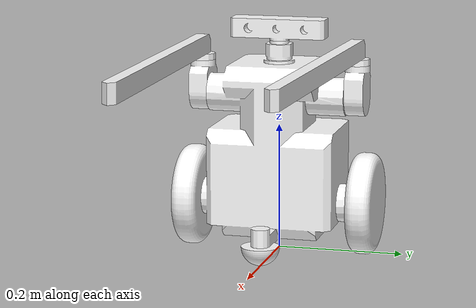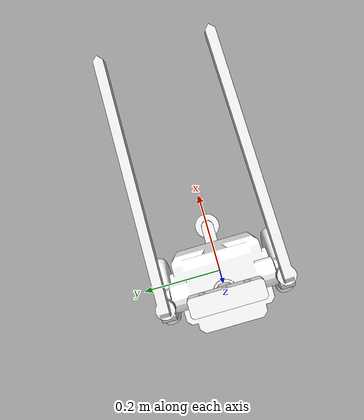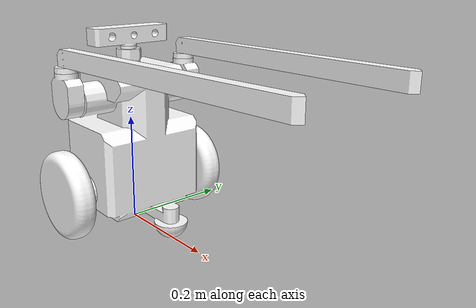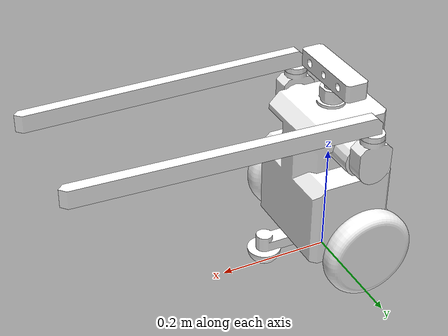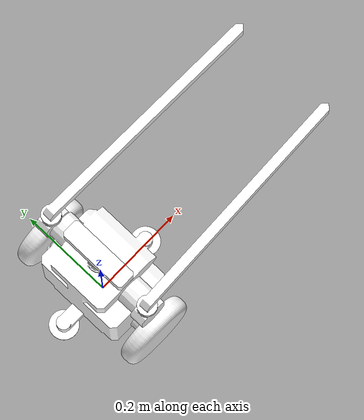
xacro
<?xml version="1.0"?>
<robot xmlns:xacro="http://www.ros.org/wiki/xacro" name="bbr_rob">
    <xacro:macro name="bbr_rob" >

  <link name="base_footprint" />

  <link
    name="base_link">
    <inertial>
      <origin
        xyz="0.0055548 -1.0842E-17 0.12396"
        rpy="0 0 0" />
      <mass
        value="4" />
      <inertia
        ixx="0.034878"
        ixy="0"
        ixz="-0.00014227"
        iyy="0.030104"
        iyz="0"
        izz="0.019095" />
    </inertial>
    <visual>
      <origin
        xyz="0 0 0"
        rpy="0 0 0" />
      <geometry>
        <mesh
          filename="file://$(find bbr_rob)/bbr_description/meshes/base_link.STL" />
      </geometry>
      <material
        name="">
        <color
          rgba="1 1 1 1" />
      </material>
    </visual>
    <collision>
      <origin
        xyz="0 0 0"
        rpy="0 0 0" />
      <geometry>
        <mesh
          filename="file://$(find bbr_rob)/bbr_description/meshes/base_link.STL" />
      </geometry>
    </collision>
  </link>

  <joint name="base_footprint_joint" type="fixed">
    <parent link="base_footprint"/>
    <child link="base_link"/>
    <origin xyz="0.0 0.0 0.03"/>
  </joint>

  <link
    name="IMU_link">
    <inertial>
      <origin
        xyz="-4.6593E-05 -4.3368E-18 0.019093"
        rpy="0 0 0" />
      <mass
        value="0.037898" />
      <inertia
        ixx="6.4173E-06"
        ixy="-4.749E-23"
        ixz="1.601E-09"
        iyy="6.456E-06"
        iyz="3.2231E-22"
        izz="7.9599E-06" />
    </inertial>
    <visual>
      <origin
        xyz="0 0 0"
        rpy="0 0 0" />
      <geometry>
        <mesh
          filename="file://$(find bbr_rob)/bbr_description/meshes/IMU_link.STL" />
      </geometry>
      <material
        name="">
        <color
          rgba="1 1 1 1" />
      </material>
    </visual>
    <collision>
      <origin
        xyz="0 0 0"
        rpy="0 0 0" />
      <geometry>
        <mesh
          filename="file://$(find bbr_rob)/bbr_description/meshes/IMU_link.STL" />
      </geometry>
    </collision>
  </link>
  <joint
    name="IMU_joint"
    type="fixed">
    <origin
      xyz="0 0 0.27"
      rpy="0 0 0" />
    <parent
      link="base_link" />
    <child
      link="IMU_link" />
    <axis
      xyz="0 0 0" />
  </joint>
  <link
    name="camera_link">
    <inertial>
      <origin
        xyz="-0.00052746 0.00012148 0.024642"
        rpy="0 0 0" />
      <mass
        value="0.17291" />
      <inertia
        ixx="0.00033064"
        ixy="-2.2114E-07"
        ixz="3.2623E-08"
        iyy="3.6772E-05"
        iyz="-7.5136E-09"
        izz="0.00033873" />
    </inertial>
    <visual>
      <origin
        xyz="0 0 0"
        rpy="0 0 0" />
      <geometry>
        <mesh
          filename="file://$(find bbr_rob)/bbr_description/meshes/camera_link.STL" />
      </geometry>
      <material
        name="">
        <color
          rgba="1 1 1 1" />
      </material>
    </visual>
    <collision>
      <origin
        xyz="0 0 0"
        rpy="0 0 0" />
      <geometry>
        <mesh
          filename="file://$(find bbr_rob)/bbr_description/meshes/camera_link.STL" />
      </geometry>
    </collision>
  </link>
  <joint
    name="camera_joint"
    type="fixed">
    <origin
      xyz="0 0 0.03"
      rpy="0 0 0" />
    <parent
      link="IMU_link" />
    <child
      link="camera_link" />
    <axis
      xyz="0 0 0" />
  </joint>
  <link
    name="right_shoulder_link">
    <inertial>
      <origin
        xyz="-0.0001526 -0.015 0.010932"
        rpy="0 0 0" />
      <mass
        value="0.12398" />
      <inertia
        ixx="6.4232E-05"
        ixy="-1.6665E-20"
        ixz="3.4019E-07"
        iyy="8.4873E-05"
        iyz="-2.8292E-20"
        izz="3.9866E-05" />
    </inertial>
    <visual>
      <origin
        xyz="0 0 0"
        rpy="0 0 0" />
      <geometry>
        <mesh
          filename="file://$(find bbr_rob)/bbr_description/meshes/right_shoulder_link.STL" />
      </geometry>
      <material
        name="">
        <color
          rgba="1 1 1 1" />
      </material>
    </visual>
    <collision>
      <origin
        xyz="0 0 0"
        rpy="0 0 0" />
      <geometry>
        <mesh
          filename="file://$(find bbr_rob)/bbr_description/meshes/right_shoulder_link.STL" />
      </geometry>
    </collision>
  </link>
  <joint
    name="right_shoulder_joint"
    type="revolute">
    <origin
      xyz="0 -0.11 0.22"
      rpy="0 0 0" />
    <parent
      link="base_link" />
    <child
      link="right_shoulder_link" />
    <axis
      xyz="0 1 0" />
    <limit
      lower="-3.14"
      upper="3.14"
      effort="100"
      velocity="100" />
  </joint>
  <link
    name="right_limb_link">
    <inertial>
      <origin
        xyz="0.23812 0.0074497 0.02755"
        rpy="0 0 0" />
      <mass
        value="0.32057" />
      <inertia
        ixx="4.986E-05"
        ixy="-0.00023219"
        ixz="-0.00016738"
        iyy="0.0075326"
        iyz="-5.2112E-06"
        izz="0.0075201" />
    </inertial>
    <visual>
      <origin
        xyz="0 0 0"
        rpy="0 0 0" />
      <geometry>
        <mesh
          filename="file://$(find bbr_rob)/bbr_description/meshes/right_limb_link.STL" />
      </geometry>
      <material
        name="">
        <color
          rgba="1 1 1 1" />
      </material>
    </visual>
    <collision>
      <origin
        xyz="0 0 0"
        rpy="0 0 0" />
      <geometry>
        <mesh
          filename="file://$(find bbr_rob)/bbr_description/meshes/right_limb_link.STL" />
      </geometry>
    </collision>
  </link>
  <joint
    name="right_limb_joint"
    type="revolute">
    <origin
      xyz="0 -0.015 0.049995"
      rpy="0 0 0" />
    <parent
      link="right_shoulder_link" />
    <child
      link="right_limb_link" />
    <axis
      xyz="-0.013958 0 0.9999" />
    <limit
      lower="-3.14"
      upper="3.14"
      effort="100"
      velocity="100" />
  </joint>
  <link
    name="left_shoulder_link">
    <inertial>
      <origin
        xyz="-0.00016452 0.015 0.010932"
        rpy="0 0 0" />
      <mass
        value="0.12398" />
      <inertia
        ixx="6.4231E-05"
        ixy="2.1973E-22"
        ixz="3.6674E-07"
        iyy="8.4873E-05"
        iyz="2.5622E-20"
        izz="3.9867E-05" />
    </inertial>
    <visual>
      <origin
        xyz="0 0 0"
        rpy="0 0 0" />
      <geometry>
        <mesh
          filename="file://$(find bbr_rob)/bbr_description/meshes/left_shoulder_link.STL" />
      </geometry>
      <material
        name="">
        <color
          rgba="1 1 1 1" />
      </material>
    </visual>
    <collision>
      <origin
        xyz="0 0 0"
        rpy="0 0 0" />
      <geometry>
        <mesh
          filename="file://$(find bbr_rob)/bbr_description/meshes/left_shoulder_link.STL" />
      </geometry>
    </collision>
  </link>
  <joint
    name="left_shoulder_joint"
    type="revolute">
    <origin
      xyz="0 0.11 0.22"
      rpy="0 0 0" />
    <parent
      link="base_link" />
    <child
      link="left_shoulder_link" />
    <axis
      xyz="0 1 0" />
    <limit
      lower="-3.14"
      upper="3.14"
      effort="100"
      velocity="100" />
  </joint>
  <link
    name="left_limb_link">
    <inertial>
      <origin
        xyz="0.23814 -0.00578 0.02781"
        rpy="0 0 0" />
      <mass
        value="0.32057" />
      <inertia
        ixx="4.7528E-05"
        ixy="0.00018343"
        ixz="-0.00017558"
        iyy="0.0075353"
        iyz="4.2891E-06"
        izz="0.0075197" />
    </inertial>
    <visual>
      <origin
        xyz="0 0 0"
        rpy="0 0 0" />
      <geometry>
        <mesh
          filename="file://$(find bbr_rob)/bbr_description/meshes/left_limb_link.STL" />
      </geometry>
      <material
        name="">
        <color
          rgba="1 1 1 1" />
      </material>
    </visual>
    <collision>
      <origin
        xyz="0 0 0"
        rpy="0 0 0" />
      <geometry>
        <mesh
          filename="file://$(find bbr_rob)/bbr_description/meshes/left_limb_link.STL" />
      </geometry>
    </collision>
  </link>
  <joint
    name="left_limb_joint"
    type="revolute">
    <origin
      xyz="0 0.015 0.049994"
      rpy="0 0 0" />
    <parent
      link="left_shoulder_link" />
    <child
      link="left_limb_link" />
    <axis
      xyz="-0.015048 0 0.99989" />
    <limit
      lower="-3.14"
      upper="3.14"
      effort="100"
      velocity="100" />
  </joint>
  <link
    name="right_wheel_link">
    <inertial>
      <origin
        xyz="9.541E-18 -0.02063 -1.3878E-17"
        rpy="0 0 0" />
      <mass
        value="0.67292" />
      <inertia
        ixx="0.0012159"
        ixy="1.0596E-20"
        ixz="-3.5451E-37"
        iyy="0.0022611"
        iyz="-1.4966E-36"
        izz="0.0012159" />
    </inertial>
    <visual>
      <origin
        xyz="0 0 0"
        rpy="0 0 0" />
      <geometry>
        <mesh
          filename="file://$(find bbr_rob)/bbr_description/meshes/right_wheel_link.STL" />
      </geometry>
      <material
        name="">
        <color
          rgba="1 1 1 1" />
      </material>
    </visual>
    <collision>
      <origin
        xyz="0 0 0"
        rpy="0 0 0" />
      <geometry>
        <mesh
          filename="file://$(find bbr_rob)/bbr_description/meshes/right_wheel_link.STL" />
      </geometry>
    </collision>
  </link>
  <joint
    name="right_wheel_joint"
    type="continuous">
    <origin
      xyz="0 -0.12 0.05"
      rpy="0 0 0" />
    <parent
      link="base_link" />
    <child
      link="right_wheel_link" />
    <axis
      xyz="0 1 0" />
  </joint>
  <link
    name="left_wheel_link">
    <inertial>
      <origin
        xyz="8.6736E-19 0.02063 -1.3878E-17"
        rpy="0 0 0" />
      <mass
        value="0.67292" />
      <inertia
        ixx="0.0012159"
        ixy="9.6665E-21"
        ixz="3.5451E-37"
        iyy="0.0022611"
        iyz="1.4966E-36"
        izz="0.0012159" />
    </inertial>
    <visual>
      <origin
        xyz="0 0 0"
        rpy="0 0 0" />
      <geometry>
        <mesh
          filename="file://$(find bbr_rob)/bbr_description/meshes/left_wheel_link.STL" />
      </geometry>
      <material
        name="">
        <color
          rgba="1 1 1 1" />
      </material>
    </visual>
    <collision>
      <origin
        xyz="0 0 0"
        rpy="0 0 0" />
      <geometry>
        <mesh
          filename="file://$(find bbr_rob)/bbr_description/meshes/left_wheel_link.STL" />
      </geometry>
    </collision>
  </link>
  <joint
    name="left_wheel_joint"
    type="continuous">
    <origin
      xyz="0 0.12 0.05"
      rpy="0 0 0" />
    <parent
      link="base_link" />
    <child
      link="left_wheel_link" />
    <axis
      xyz="0 1 0" />
  </joint>
  <link
    name="front_caster_link">
    <inertial>
      <origin
        xyz="2.7756E-17 -6.9389E-18 -0.01125"
        rpy="0 0 0" />
      <mass
        value="0.5" />
      <inertia
        ixx="0.00011672"
        ixy="0"
        ixz="0"
        iyy="0.00011672"
        iyz="0"
        izz="0.00018" />
    </inertial>
    <visual>
      <origin
        xyz="0 0 0"
        rpy="0 0 0" />
      <geometry>
        <mesh
          filename="file://$(find bbr_rob)/bbr_description/meshes/front_caster_link.STL" />
      </geometry>
      <material
        name="">
        <color
          rgba="1 1 1 1" />
      </material>
    </visual>
    <collision>
      <origin
        xyz="0 0 0"
        rpy="0 0 0" />
      <geometry>
        <mesh
          filename="file://$(find bbr_rob)/bbr_description/meshes/front_caster_link.STL" />
      </geometry>
    </collision>
  </link>
  <joint
    name="front_caster_joint"
    type="fixed">
    <origin
      xyz="0.12144 0 0.002"
      rpy="0 0 0" />
    <parent
      link="base_link" />
    <child
      link="front_caster_link" />
    <axis
      xyz="0 0 0" />
  </joint>
  <link
    name="rear_caster_link">
    <inertial>
      <origin
        xyz="-2.7756E-17 6.9389E-18 -0.011093"
        rpy="0 0 0" />
      <mass
        value="0.5" />
      <inertia
        ixx="0.00011672"
        ixy="0"
        ixz="0"
        iyy="0.00011672"
        iyz="0"
        izz="0.00018" />
    </inertial>
    <visual>
      <origin
        xyz="0 0 0"
        rpy="0 0 0" />
      <geometry>
        <mesh
          filename="file://$(find bbr_rob)/bbr_description/meshes/rear_caster_link.STL" />
      </geometry>
      <material
        name="">
        <color
          rgba="1 1 1 1" />
      </material>
    </visual>
    <collision>
      <origin
        xyz="0 0 0"
        rpy="0 0 0" />
      <geometry>
        <mesh
          filename="file://$(find bbr_rob)/bbr_description/meshes/rear_caster_link.STL" />
      </geometry>
    </collision>
  </link>
  <joint
    name="rear_caster_joint"
    type="fixed">
    <origin
      xyz="-0.10856 0 0.002"
      rpy="0 0 0" />
    <parent
      link="base_link" />
    <child
      link="rear_caster_link" />
    <axis
      xyz="0 0 0" />
  </joint>

  <gazebo reference="base_link">
        <material>Gazebo/Purple</material>
  </gazebo>
  <gazebo reference="IMU_link">
        <material>Gazebo/Yellow</material>
  </gazebo>
  <gazebo reference="camera_link">
        <material>Gazebo/Red</material>
  </gazebo>
  <gazebo reference="right_shoulder_link">
        <material>Gazebo/Blue</material>
  </gazebo>
  <gazebo reference="right_limb_link">
        <material>Gazebo/Green</material>
  </gazebo>
  <gazebo reference="left_shoulder_link">
        <material>Gazebo/Blue</material>
  </gazebo>
  <gazebo reference="left_limb_link">
        <material>Gazebo/Green</material>
  </gazebo>
  <gazebo reference="right_wheel_link">
        <material>Gazebo/Red</material>
  </gazebo>
  <gazebo reference="left_wheel_link">
        <material>Gazebo/Red</material>
  </gazebo>

  <gazebo reference="right_wheel_link">
    <mu1 value="20.0"/>
    <mu2 value="20.0"/>
    <kp value="1000000000.0"/>
    <kd value="1.0"/>
  </gazebo>
  <gazebo reference="left_wheel_link">
    <mu1 value="20.0"/>
    <mu2 value="20.0"/>
    <kp value="1000000000.0"/>
    <kd value="1.0"/>
  </gazebo>
  <gazebo reference="front_caster_link">
    <mu1 value="0.0"/>
    <mu2 value="0.0"/>
    <kp value="1000000000.0"/>
    <kd value="1.0"/>
  </gazebo>
  <gazebo reference="rear_caster_link">
    <mu1 value="0.0"/>
    <mu2 value="0.0"/>
    <kp value="1000000000.0"/>
    <kd value="1.0"/>
  </gazebo>

  <gazebo reference="camera_link">
    <sensor type="depth" name="camera_sensor">
        <plugin name="depth_camera" filename="libgazebo_ros_camera.so">
            <frame_name>camera_optical_link</frame_name>
        </plugin>
        <always_on>true</always_on>
        <update_rate>10</update_rate>
        <camera name="camera">
            <horizontal_fov>1.5009831567</horizontal_fov>
            <image>
                <width>800</width>
                <height>600</height>
                <format>R8G8B8</format>
            </image>
            <distortion>
                <k1>0.0</k1>
                <k2>0.0</k2>
                <k3>0.0</k3>
                <p1>0.0</p1>
                <p2>0.0</p2>
                <center>0.5 0.5</center>
            </distortion>
        </camera>
    </sensor>
  </gazebo>

  <gazebo reference="IMU_link">
    <sensor name="imu_sensor" type="imu">
        <plugin name="imu_plugin" filename="libgazebo_ros_imu_sensor.so">
            <ros>
                <namespace>/</namespace>
                <remapping>~/out:=imu</remapping>
            </ros>
            <initial_orientation_as_reference>true</initial_orientation_as_reference>
        </plugin>
        <update_rate>100</update_rate>
        <always_on>true</always_on>
        <visualize>true</visualize>
        <!-- 六轴噪声设置 -->
    </sensor>
  </gazebo>

  <ros2_control name="bbrGazeboSystem" type="system">
            <hardware>
                <plugin>gazebo_ros2_control/GazeboSystem</plugin>
            </hardware>
            <joint name="left_wheel_joint">
                <command_interface name="velocity">
                    <param name="min">-1</param>
                    <param name="max">1</param>
                </command_interface>
                <command_interface name="effort">
                    <param name="min">-0.1</param>
                    <param name="max">0.1</param>
                </command_interface>
                <state_interface name="position" />
                <state_interface name="velocity" />
                <state_interface name="effort" />
            </joint>
            <joint name="right_wheel_joint">
                <command_interface name="velocity">
                    <param name="min">-1</param>
                    <param name="max">1</param>
                </command_interface>
                <command_interface name="effort">
                    <param name="min">-0.1</param>
                    <param name="max">0.1</param>
                </command_interface>
                <state_interface name="position" />
                <state_interface name="velocity" />
                <state_interface name="effort" />
            </joint>
            <joint name="right_shoulder_joint">
                <command_interface name="position"/>
                <command_interface name="velocity"/>
                <state_interface name="position"/>
                <state_interface name="velocity"/>
                <state_interface name="effort" />
            </joint>
            <joint name="right_limb_joint">
                <command_interface name="position"/>
                <command_interface name="velocity"/>
                <state_interface name="position"/>
                <state_interface name="velocity"/>
                <state_interface name="effort" />
            </joint>
            <joint name="left_shoulder_joint">
                <command_interface name="position"/>
                <command_interface name="velocity"/>
                <state_interface name="position"/>
                <state_interface name="velocity"/>
                <state_interface name="effort" />
            </joint>
            <joint name="left_limb_joint">
                <command_interface name="position"/>
                <command_interface name="velocity"/>
                <state_interface name="position"/>
                <state_interface name="velocity"/>
                <state_interface name="effort" />
            </joint>
        </ros2_control>

  <gazebo>
        <plugin filename="libgazebo_ros2_control.so" name="gazebo_ros2_control">
            <parameters>$(find bbr_rob)/bbr_description/config/bbr_ros2_controller.yaml</parameters>
            <ros>
                <remapping>/bbr_diff_drive_controller/cmd_vel_unstamped:=/cmd_vel</remapping>
                <remapping>/bbr_diff_drive_controller/odom:=/odom</remapping>
            </ros>
        </plugin>
  </gazebo>

</xacro:macro>

    <xacro:bbr_rob />

</robot>
